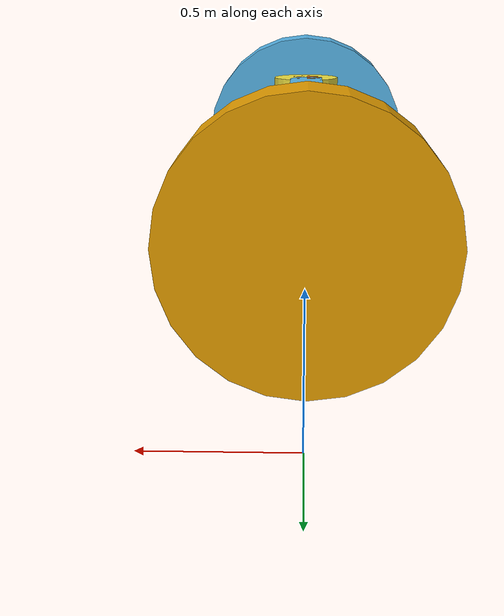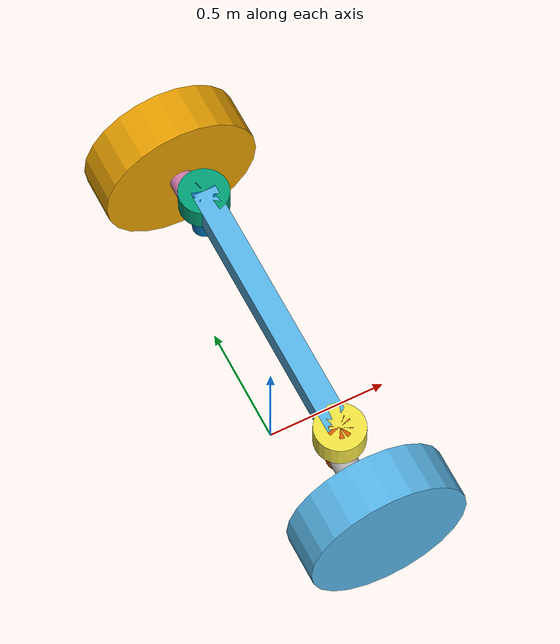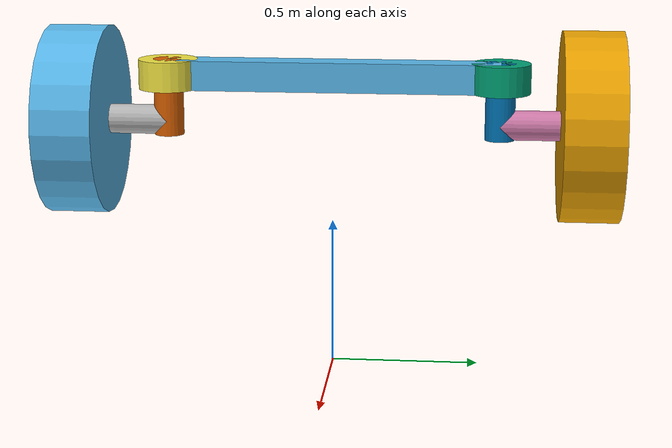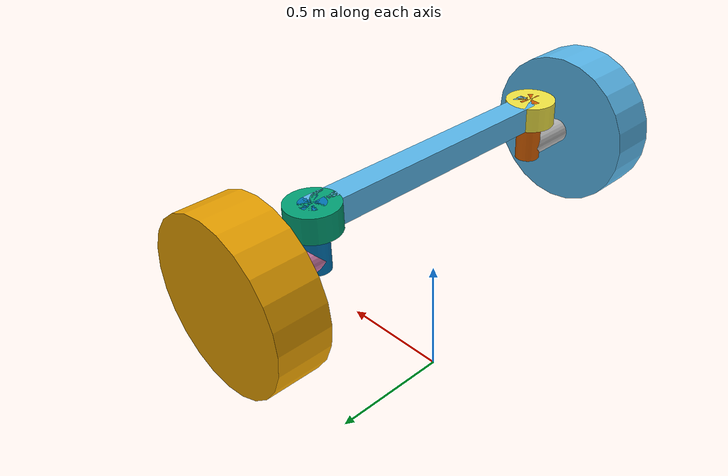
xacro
<?xml version="1.0"?>
<robot xmlns:xacro="http://www.ros.org/wiki/xacro" name="front_axle_assembly">

  <!-- Degree-to-radian conversions -->
  <xacro:property name="degrees_45" value="0.785398163"/>
  <xacro:property name="degrees_90" value="1.57079633"/>

  <xacro:property name="wheel_travel_front" value="0.208"/>

  <xacro:property name="front_axle_L" value="0.10"/>
  <xacro:property name="front_axle_W" value="1.12"/>
  <xacro:property name="front_axle_H" value="0.10"/>
  <xacro:property name="front_axle_M" value="10"/>

  <xacro:property name="shock_upper_R" value="0.10"/>
  <xacro:property name="shock_upper_H" value="${front_axle_H}"/>
  <xacro:property name="shock_upper_M" value="3"/>

  <xacro:property name="shock_lower_R" value="${shock_upper_R/2}"/>
  <xacro:property name="shock_lower_H" value="${wheel_travel_front+1/2*front_axle_H}"/>
  <xacro:property name="shock_lower_M" value="1"/>

  <xacro:property name="steer_link_R" value="0.05"/>
  <xacro:property name="steer_link_H" value="0.20"/>
  <xacro:property name="steer_link_M" value="1"/>

  <xacro:property name="wheel_front_R" value="0.32"/>
  <xacro:property name="wheel_front_H" value="0.20"/>
  <xacro:property name="wheel_front_M" value="3"/>

  <xacro:property name="shock_wall_thickness" value="0.01"/>

  <xacro:property name="shock_eff_limit" value="20"/>
  <xacro:property name="shock_vel_limit" value="1000"/>

  <xacro:property name="axle_eff_limit" value="100"/>
  <xacro:property name="axle_vel_limit" value="244.8696"/>

  <!-- These constants are used to simulate a Traxxas 2056 servo operated at
       6 V. servo_stall_torque is measured in N m. servo_no_load_speed is
       measured in rad/s. -->
  <xacro:property name="steer_stall_torque" value="50"/>
  <xacro:property name="steer_no_load_speed" value="4.553"/>

  <!-- Inertia of a solid cuboid. Width is measured along the x axis, depth
       along the y axis, and height along the z axis. -->
  <xacro:macro name="solid_cuboid_inertial"
               params="width depth height mass">
    <inertial>
      <mass value="${mass}"/>
      <origin/>
      <inertia ixx="${mass * (depth * depth + height * height) / 12}"
               ixy="0" ixz="0"
               iyy="${mass * (width * width + height * height) / 12}"
               iyz="0"
               izz="${mass * (width * width + depth * depth) / 12}"/>
    </inertial>
  </xacro:macro>

  <xacro:macro name="thick_walled_tube_inertial"
               params="inner_rad outer_rad height mass">
    <inertial>
      <mass value="${mass}"/>
      <inertia ixx="${(1 / 12) * mass * (3 * (inner_rad * inner_rad +
                    outer_rad * outer_rad) + height * height)}"
               ixy="0" ixz="0"
               iyy="${(1 / 12) * mass * (3 * (inner_rad * inner_rad +
                    outer_rad * outer_rad) + height * height)}"
               iyz="0"
               izz="${mass * (inner_rad * inner_rad +
                    outer_rad * outer_rad) / 2}"/>
    </inertial>
  </xacro:macro>

  <!-- Used for fixing robot to Gazebo 'base_link' -->
  <link name="world"/>

  <joint name="fixed" type="fixed">
    <parent link="world"/>
    <child link="front_axle"/>
    <origin xyz="0 0 1" />
  </joint>

  <!-- front_axle-->
    <link name="front_axle">
      <visual>
        <origin xyz="0 0 0" rpy="0 0 0" />
        <geometry>
          <box size="${front_axle_L} ${front_axle_W} ${front_axle_H}"/>
        </geometry>
        <material name="mat_1"/>
      </visual>

      <collision>
        <origin xyz="0 0 0" rpy="0 0 0" />
        <geometry>
          <box size="${front_axle_L} ${front_axle_W} ${front_axle_H}"/>
        </geometry>
      </collision>

      <xacro:solid_cuboid_inertial
         width="${front_axle_L}" depth="${front_axle_W}"
         height="${front_axle_H}" mass="${front_axle_M}">
      </xacro:solid_cuboid_inertial>
    </link>

  <!-- shock_upper_front_left -->
    <link name="shock_upper_front_left">
      <visual>
        <origin xyz="0 0 0"/>
        <geometry>
          <cylinder radius="${shock_upper_R}" length="${shock_upper_H}"/>
        </geometry>
        <material name="tire_mat"/>
      </visual>

      <collision>
        <origin xyz="0 0 0"/>
        <geometry>
          <cylinder radius="${shock_upper_R}" length="${shock_upper_H}"/>
        </geometry>
      </collision>

      <xacro:thick_walled_tube_inertial
          inner_rad="${shock_upper_R - shock_wall_thickness}" outer_rad="${shock_upper_R}"
          height="${shock_upper_H}" mass="${shock_upper_M}"/>
    </link>

  <!-- JOINT shock_upper_front_left TO front_axle -->
    <joint name="shock_front_left_to_front_axle_joint" type="fixed">
      <parent link="front_axle"/>
      <child link="shock_upper_front_left"/>
      <origin xyz="0 ${front_axle_W/2} 0"/>
    </joint>

  <!-- shock_upper_front_right -->
    <link name="shock_upper_front_right">
      <visual>
        <origin xyz="0 0 0"/>
        <geometry>
          <cylinder radius="${shock_upper_R}" length="${shock_upper_H}"/>
        </geometry>
        <material name="tire_mat"/>
      </visual>

      <collision>
        <origin xyz="0 0 0"/>
        <geometry>
          <cylinder radius="${shock_upper_R}" length="${shock_upper_H}"/>
        </geometry>
      </collision>

      <xacro:thick_walled_tube_inertial
          inner_rad="${shock_upper_R - shock_wall_thickness}" outer_rad="${shock_upper_R}"
          height="${shock_upper_H}" mass="${shock_upper_M}"/>
    </link>

  <!-- JOINT shock_upper_front_right TO front_axle -->
    <joint name="shock_front_right_to_front_axle_joint" type="fixed">
      <parent link="front_axle"/>
      <child link="shock_upper_front_right"/>
      <origin xyz="0 ${-front_axle_W/2} 0"/>
    </joint>

  <!-- shock_lower_front_left -->
    <link name="shock_lower_front_left">
      <visual>
        <origin xyz="0 0 0"/>
        <geometry>
          <cylinder radius="${shock_lower_R}" length="${shock_lower_H}"/>
        </geometry>
        <material name="tire_mat"/>
      </visual>

      <collision>
        <origin xyz="0 0 0"/>
        <geometry>
          <cylinder radius="${shock_lower_R}" length="${shock_lower_H}"/>
        </geometry>
      </collision>

      <xacro:thick_walled_tube_inertial
          inner_rad="${shock_lower_R - shock_wall_thickness}" outer_rad="${shock_lower_R}"
          height="${shock_lower_H}" mass="${shock_lower_M}"/>
    </link>

  <!-- JOINT shock_lower_front_left TO shock_upper_front_left -->
    <joint name="shock_front_left_upper_to_lower_joint" type="prismatic">
      <parent link="shock_upper_front_left"/>
      <child link="shock_lower_front_left"/>
      <origin xyz="0 0 ${-shock_lower_H/2 + 1/2*front_axle_H}"/>
      <axis xyz="0 0 1"/>
      <limit lower="0" upper="${wheel_travel_front}"
             effort="${shock_eff_limit}" velocity="${shock_vel_limit}"/>
    </joint>

    <transmission name="front_left_shock_trans">
      <type>transmission_interface/SimpleTransmission</type>
      <joint name="shock_front_left_upper_to_lower_joint">
        <hardwareInterface>EffortJointInterface</hardwareInterface>
      </joint>
      <actuator name="front_left_shock_act">
        <!-- This hardwareInterface element exists for compatibility
             with ROS Hydro. -->
        <hardwareInterface>EffortJointInterface</hardwareInterface>
        <mechanicalReduction>1</mechanicalReduction>
      </actuator>
    </transmission>

  <!-- shock_lower_front_right -->
    <link name="shock_lower_front_right">
      <visual>
        <origin xyz="0 0 0"/>
        <geometry>
          <cylinder radius="${shock_lower_R}" length="${shock_lower_H}"/>
        </geometry>
        <material name="tire_mat"/>
      </visual>

      <collision>
        <origin xyz="0 0 0"/>
        <geometry>
          <cylinder radius="${shock_lower_R}" length="${shock_lower_H}"/>
        </geometry>
      </collision>

      <xacro:thick_walled_tube_inertial
          inner_rad="${shock_lower_R - shock_wall_thickness}" outer_rad="${shock_lower_R}"
          height="${shock_lower_H}" mass="${shock_lower_M}"/>
    </link>

  <!-- JOINT shock_lower_front_right TO shock_upper_front_right -->
    <joint name="shock_front_right_upper_to_lower_joint" type="prismatic">
      <parent link="shock_upper_front_right"/>
      <child link="shock_lower_front_right"/>
      <origin xyz="0 0 ${-shock_lower_H/2 + 1/2*front_axle_H}"/>
      <axis xyz="0 0 1"/>
      <limit lower="0" upper="${wheel_travel_front}"
             effort="${shock_eff_limit}" velocity="${shock_vel_limit}"/>
    </joint>

    <transmission name="front_right_shock_trans">
      <type>transmission_interface/SimpleTransmission</type>
      <joint name="shock_front_right_upper_to_lower_joint">
        <hardwareInterface>EffortJointInterface</hardwareInterface>
      </joint>
      <actuator name="front_right_shock_act">
        <!-- This hardwareInterface element exists for compatibility
             with ROS Hydro. -->
        <hardwareInterface>EffortJointInterface</hardwareInterface>
        <mechanicalReduction>1</mechanicalReduction>
      </actuator>
    </transmission>

  <!-- steer_link_front_left -->
    <link name="steer_link_front_left">
      <visual>
        <origin xyz="0 ${steer_link_H/2} 0" rpy="${degrees_90} 0 0"/>
        <geometry>
          <cylinder radius="${steer_link_R}" length="${steer_link_H}"/>
        </geometry>
        <material name="tire_mat"/>
      </visual>

      <collision>
        <origin xyz="0 ${steer_link_H/2} 0" rpy="${degrees_90} 0 0"/>
        <geometry>
          <cylinder radius="${steer_link_R}" length="${steer_link_H}"/>
        </geometry>
      </collision>

      <xacro:thick_walled_tube_inertial
          inner_rad="${steer_link_R - shock_wall_thickness}" outer_rad="${steer_link_R}"
          height="${steer_link_H}" mass="${steer_link_M}"/>
    </link>

  <!-- JOINT steer_link_front_left TO shock_lower_front_left -->
    <joint name="steer_front_left_joint" type="revolute">
      <parent link="shock_lower_front_left"/>
      <child link="steer_link_front_left"/>
      <origin xyz="0 0 ${-shock_lower_H/2 + steer_link_R}"/>
      <axis xyz="0 0 1"/>
      <limit lower="${-degrees_45}" upper="${degrees_45}"
             effort="${steer_stall_torque}" velocity="${steer_no_load_speed}"/>
    </joint>

    <transmission name="front_left_steering_trans">
      <type>transmission_interface/SimpleTransmission</type>
      <joint name="steer_front_left_joint">
        <hardwareInterface>EffortJointInterface</hardwareInterface>
      </joint>
      <actuator name="front_left_steering_act">
        <!-- This hardwareInterface element exists for compatibility
             with ROS Hydro. -->
        <hardwareInterface>EffortJointInterface</hardwareInterface>
        <mechanicalReduction>1</mechanicalReduction>
      </actuator>
    </transmission>

  <!-- steer_link_front_right -->
    <link name="steer_link_front_right">
      <visual>
        <origin xyz="0 ${-steer_link_H/2} 0" rpy="${degrees_90} 0 0"/>
        <geometry>
          <cylinder radius="${steer_link_R}" length="${steer_link_H}"/>
        </geometry>
        <material name="tire_mat"/>
      </visual>

      <collision>
        <origin xyz="0 0 0" rpy="${degrees_90} 0 0"/>
        <geometry>
        <origin xyz="0 ${-steer_link_H/2} 0" rpy="${degrees_90} 0 0"/>
        </geometry>
      </collision>

      <xacro:thick_walled_tube_inertial
          inner_rad="${steer_link_R - shock_wall_thickness}" outer_rad="${steer_link_R}"
          height="${steer_link_H}" mass="${steer_link_M}"/>
    </link>

  <!-- JOINT steer_link_front_right TO shock_lower_front_right -->
    <joint name="steer_front_right_joint" type="revolute">
      <parent link="shock_lower_front_right"/>
      <child link="steer_link_front_right"/>
      <origin xyz="0 0 ${-shock_lower_H/2 + steer_link_R}"/>
      <axis xyz="0 0 1"/>
      <limit lower="${-degrees_45}" upper="${degrees_45}"
             effort="${steer_stall_torque}" velocity="${steer_no_load_speed}"/>
    </joint>

    <transmission name="front_right_steering_trans">
      <type>transmission_interface/SimpleTransmission</type>
      <joint name="steering_front_right_joint">
        <hardwareInterface>EffortJointInterface</hardwareInterface>
      </joint>
      <actuator name="front_right_steering_act">
        <!-- This hardwareInterface element exists for compatibility
             with ROS Hydro. -->
        <hardwareInterface>EffortJointInterface</hardwareInterface>
        <mechanicalReduction>1</mechanicalReduction>
      </actuator>
    </transmission>

  <!-- wheel_front_left -->
    <link name="wheel_front_left">
      <visual>
        <origin xyz="0 ${wheel_front_H/2} 0" rpy="${degrees_90} 0 0"/>
        <geometry>
          <cylinder radius="${wheel_front_R}" length="${wheel_front_H}"/>
        </geometry>
        <material name="tire_mat"/>
      </visual>

      <collision>
        <origin xyz="0 ${wheel_front_H/2} 0" rpy="${degrees_90} 0 0"/>
        <geometry>
          <cylinder radius="${wheel_front_R}" length="${wheel_front_H}"/>
        </geometry>
      </collision>

      <xacro:thick_walled_tube_inertial
          inner_rad="${wheel_front_R - shock_wall_thickness}" outer_rad="${wheel_front_R}"
          height="${wheel_front_H}" mass="${wheel_front_M}"/>
    </link>

  <!-- JOINT wheel_front_left TO steer_link_front_left -->
    <joint name="wheel_front_left_to_steer_link_joint" type="continuous">
      <parent link="steer_link_front_left"/>
      <child link="wheel_front_left"/>
      <origin xyz="0 ${steer_link_H} 0 "/>
      <axis xyz="0 1 0"/>
      <limit effort="${axle_eff_limit}" velocity="${axle_vel_limit}"/>
    </joint>

  <!-- wheel_front_right -->
    <link name="wheel_front_right">
      <visual>
        <origin xyz="0 ${-wheel_front_H/2} 0" rpy="${degrees_90} 0 0"/>
        <geometry>
          <cylinder radius="${wheel_front_R}" length="${wheel_front_H}"/>
        </geometry>
        <material name="tire_mat"/>
      </visual>

      <collision>
        <origin xyz="0 ${-wheel_front_H/2} 0" rpy="${degrees_90} 0 0"/>
        <geometry>
          <cylinder radius="${wheel_front_R}" length="${wheel_front_H}"/>
        </geometry>
      </collision>

      <xacro:thick_walled_tube_inertial
          inner_rad="${wheel_front_R - shock_wall_thickness}" outer_rad="${wheel_front_R}"
          height="${wheel_front_H}" mass="${wheel_front_M}"/>
    </link>

  <!-- JOINT wheel_front_right TO steer_link_front_right -->
    <joint name="wheel_front_right_to_steer_link_joint" type="continuous">
      <parent link="steer_link_front_right"/>
      <child link="wheel_front_right"/>
      <origin xyz="0 ${-steer_link_H} 0 "/>
      <axis xyz="0 1 0"/>
      <limit effort="${axle_eff_limit}" velocity="${axle_vel_limit}"/>
    </joint>
</robot>
